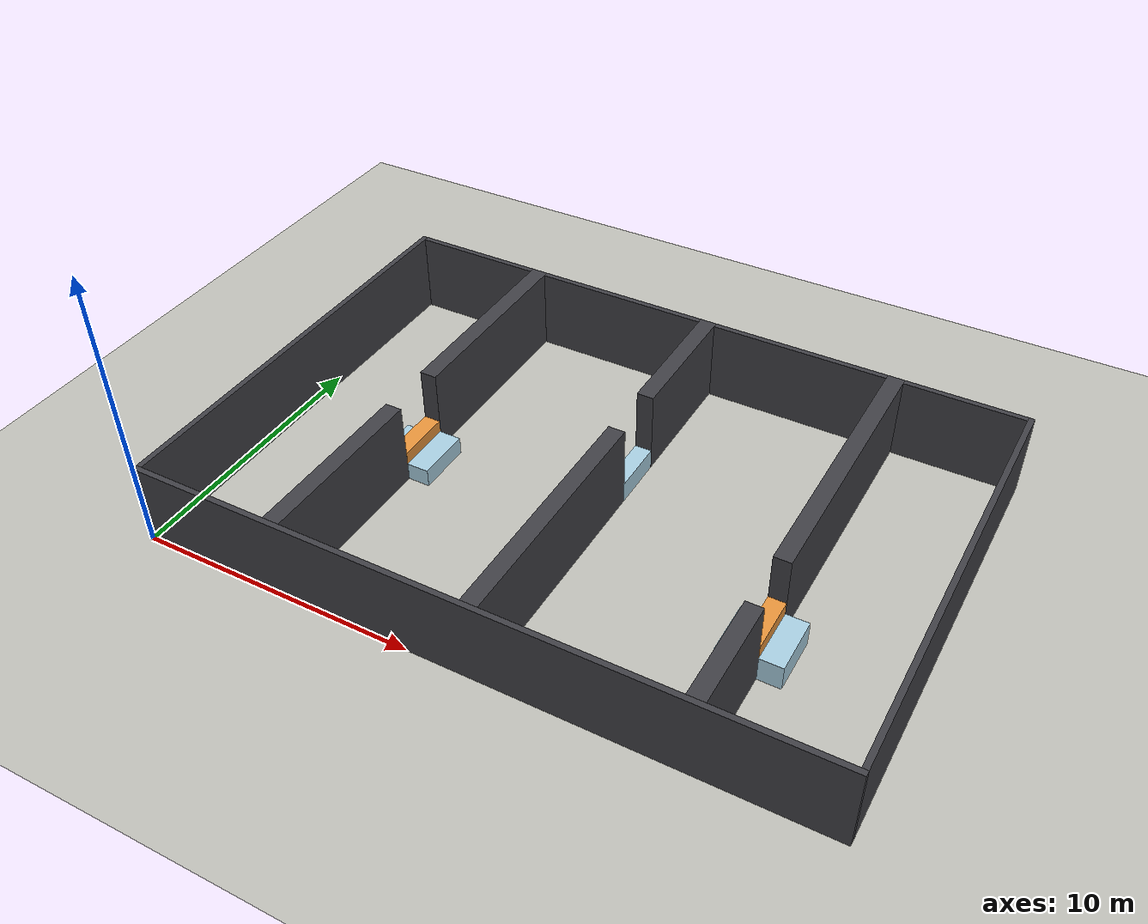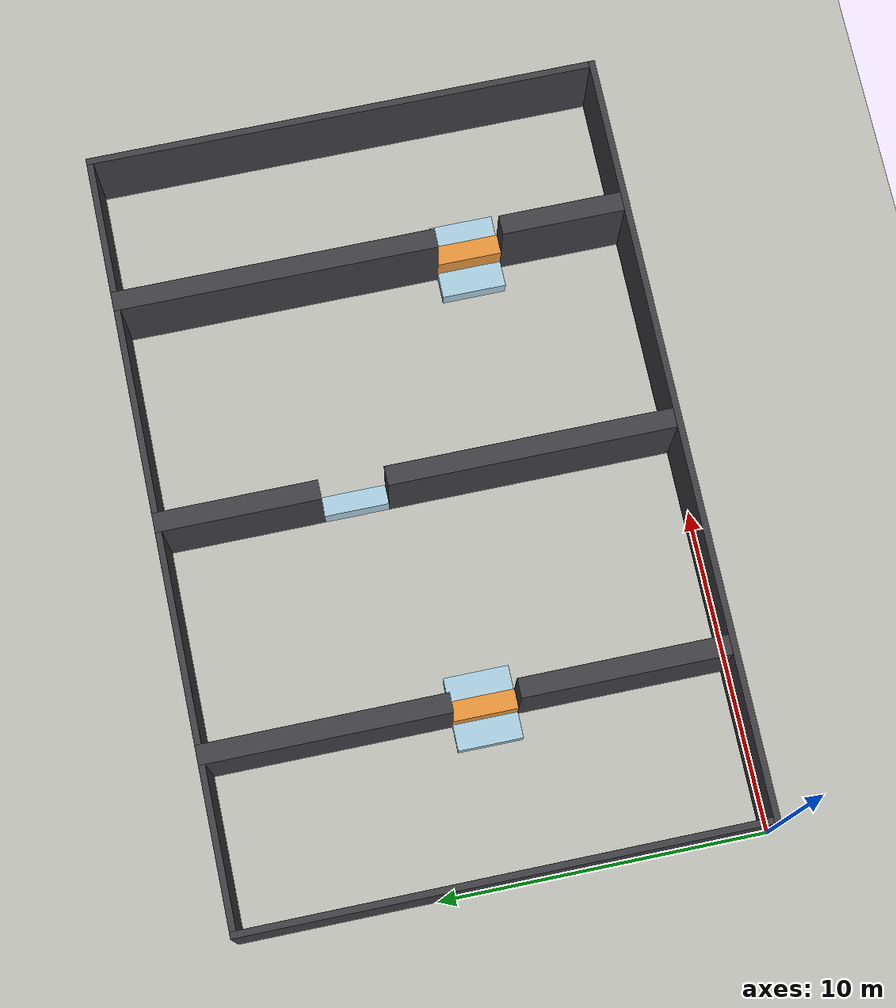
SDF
<?xml version="1.0" ?>
<!-- 자동 생성 파일 — 직접 수정하지 말 것.
     생성: python3 benchmark/export_sdf.py
     원본: benchmark/envs/heightmap.py 의 hard_corridor
     격벽 3개, 통로가 전부 장애물 -> 비행 필수 (지상 전용 실패) -->
<sdf version="1.9">
  <world name="hard_corridor">

    <physics name="1ms" type="ignored">
      <max_step_size>0.001</max_step_size>
      <real_time_factor>1.0</real_time_factor>
    </physics>

    <plugin filename="gz-sim-physics-system" name="gz::sim::systems::Physics">
    </plugin>
    <plugin filename="gz-sim-user-commands-system" name="gz::sim::systems::UserCommands">
    </plugin>
    <plugin filename="gz-sim-scene-broadcaster-system" name="gz::sim::systems::SceneBroadcaster">
    </plugin>
    <plugin filename="gz-sim-contact-system" name="gz::sim::systems::Contact">
    </plugin>
    <plugin filename="gz-sim-imu-system" name="gz::sim::systems::Imu">
    </plugin>
    <plugin filename="gz-sim-sensors-system" name="gz::sim::systems::Sensors">
      <render_engine>ogre</render_engine>
    </plugin>

    <light type="directional" name="sun">
      <cast_shadows>true</cast_shadows>
      <pose>0 0 10 0 0 0</pose>
      <diffuse>0.8 0.8 0.8 1</diffuse>
      <specular>0.2 0.2 0.2 1</specular>
      <direction>-0.5 0.1 -0.9</direction>
    </light>

    <model name="ground_plane">
      <static>true</static>
      <link name="link">
        <collision name="collision">
          <geometry><plane>
            <normal>0 0 1</normal>
            <size>34.0 26.0</size>
          </plane></geometry>
        </collision>
        <visual name="visual">
          <geometry><plane>
            <normal>0 0 1</normal>
            <size>34.0 26.0</size>
          </plane></geometry>
          <material>
            <ambient>0.75 0.75 0.72 1</ambient>
            <diffuse>0.75 0.75 0.72 1</diffuse>
          </material>
        </visual>
      </link>
    </model>

    <model name="obs_0001_h040">
      <static>true</static>
      <pose>4.600 7.500 0.200 0 0 0</pose>
      <link name="link">
        <collision name="collision">
          <geometry><box><size>0.800 2.000 0.400</size></box></geometry>
        </collision>
        <visual name="visual">
          <geometry><box><size>0.800 2.000 0.400</size></box></geometry>
          <material>
            <ambient>0.66 0.81 0.88 1</ambient>
            <diffuse>0.66 0.81 0.88 1</diffuse>
          </material>
        </visual>
      </link>
    </model>
    <model name="obs_0002_h055">
      <static>true</static>
      <pose>18.600 5.000 0.275 0 0 0</pose>
      <link name="link">
        <collision name="collision">
          <geometry><box><size>0.800 2.000 0.550</size></box></geometry>
        </collision>
        <visual name="visual">
          <geometry><box><size>0.800 2.000 0.550</size></box></geometry>
          <material>
            <ambient>0.66 0.81 0.88 1</ambient>
            <diffuse>0.66 0.81 0.88 1</diffuse>
          </material>
        </visual>
      </link>
    </model>
    <model name="obs_0003_h065">
      <static>true</static>
      <pose>6.000 7.500 0.325 0 0 0</pose>
      <link name="link">
        <collision name="collision">
          <geometry><box><size>0.800 2.000 0.650</size></box></geometry>
        </collision>
        <visual name="visual">
          <geometry><box><size>0.800 2.000 0.650</size></box></geometry>
          <material>
            <ambient>0.66 0.81 0.88 1</ambient>
            <diffuse>0.66 0.81 0.88 1</diffuse>
          </material>
        </visual>
      </link>
    </model>
    <model name="obs_0004_h075">
      <static>true</static>
      <pose>12.300 10.000 0.375 0 0 0</pose>
      <link name="link">
        <collision name="collision">
          <geometry><box><size>0.600 2.000 0.750</size></box></geometry>
        </collision>
        <visual name="visual">
          <geometry><box><size>0.600 2.000 0.750</size></box></geometry>
          <material>
            <ambient>0.66 0.81 0.88 1</ambient>
            <diffuse>0.66 0.81 0.88 1</diffuse>
          </material>
        </visual>
      </link>
    </model>
    <model name="obs_0005_h090">
      <static>true</static>
      <pose>20.000 5.000 0.450 0 0 0</pose>
      <link name="link">
        <collision name="collision">
          <geometry><box><size>0.800 2.000 0.900</size></box></geometry>
        </collision>
        <visual name="visual">
          <geometry><box><size>0.800 2.000 0.900</size></box></geometry>
          <material>
            <ambient>0.66 0.81 0.88 1</ambient>
            <diffuse>0.66 0.81 0.88 1</diffuse>
          </material>
        </visual>
      </link>
    </model>
    <model name="obs_0006_h110">
      <static>true</static>
      <pose>5.300 7.500 0.550 0 0 0</pose>
      <link name="link">
        <collision name="collision">
          <geometry><box><size>0.600 2.000 1.100</size></box></geometry>
        </collision>
        <visual name="visual">
          <geometry><box><size>0.600 2.000 1.100</size></box></geometry>
          <material>
            <ambient>0.91 0.58 0.23 1</ambient>
            <diffuse>0.91 0.58 0.23 1</diffuse>
          </material>
        </visual>
      </link>
    </model>
    <model name="obs_0007_h135">
      <static>true</static>
      <pose>19.300 5.000 0.675 0 0 0</pose>
      <link name="link">
        <collision name="collision">
          <geometry><box><size>0.600 2.000 1.350</size></box></geometry>
        </collision>
        <visual name="visual">
          <geometry><box><size>0.600 2.000 1.350</size></box></geometry>
          <material>
            <ambient>0.91 0.58 0.23 1</ambient>
            <diffuse>0.91 0.58 0.23 1</diffuse>
          </material>
        </visual>
      </link>
    </model>
    <model name="obs_0008_h300">
      <static>true</static>
      <pose>12.000 0.100 1.500 0 0 0</pose>
      <link name="link">
        <collision name="collision">
          <geometry><box><size>24.000 0.200 3.000</size></box></geometry>
        </collision>
        <visual name="visual">
          <geometry><box><size>24.000 0.200 3.000</size></box></geometry>
          <material>
            <ambient>0.25 0.25 0.27 1</ambient>
            <diffuse>0.25 0.25 0.27 1</diffuse>
          </material>
        </visual>
      </link>
    </model>
    <model name="obs_0009_h300">
      <static>true</static>
      <pose>0.100 8.100 1.500 0 0 0</pose>
      <link name="link">
        <collision name="collision">
          <geometry><box><size>0.200 15.800 3.000</size></box></geometry>
        </collision>
        <visual name="visual">
          <geometry><box><size>0.200 15.800 3.000</size></box></geometry>
          <material>
            <ambient>0.25 0.25 0.27 1</ambient>
            <diffuse>0.25 0.25 0.27 1</diffuse>
          </material>
        </visual>
      </link>
    </model>
    <model name="obs_0010_h300">
      <static>true</static>
      <pose>5.300 3.350 1.500 0 0 0</pose>
      <link name="link">
        <collision name="collision">
          <geometry><box><size>0.600 6.300 3.000</size></box></geometry>
        </collision>
        <visual name="visual">
          <geometry><box><size>0.600 6.300 3.000</size></box></geometry>
          <material>
            <ambient>0.25 0.25 0.27 1</ambient>
            <diffuse>0.25 0.25 0.27 1</diffuse>
          </material>
        </visual>
      </link>
    </model>
    <model name="obs_0011_h300">
      <static>true</static>
      <pose>12.300 4.600 1.500 0 0 0</pose>
      <link name="link">
        <collision name="collision">
          <geometry><box><size>0.600 8.800 3.000</size></box></geometry>
        </collision>
        <visual name="visual">
          <geometry><box><size>0.600 8.800 3.000</size></box></geometry>
          <material>
            <ambient>0.25 0.25 0.27 1</ambient>
            <diffuse>0.25 0.25 0.27 1</diffuse>
          </material>
        </visual>
      </link>
    </model>
    <model name="obs_0012_h300">
      <static>true</static>
      <pose>19.300 2.100 1.500 0 0 0</pose>
      <link name="link">
        <collision name="collision">
          <geometry><box><size>0.600 3.800 3.000</size></box></geometry>
        </collision>
        <visual name="visual">
          <geometry><box><size>0.600 3.800 3.000</size></box></geometry>
          <material>
            <ambient>0.25 0.25 0.27 1</ambient>
            <diffuse>0.25 0.25 0.27 1</diffuse>
          </material>
        </visual>
      </link>
    </model>
    <model name="obs_0013_h300">
      <static>true</static>
      <pose>23.900 8.100 1.500 0 0 0</pose>
      <link name="link">
        <collision name="collision">
          <geometry><box><size>0.200 15.800 3.000</size></box></geometry>
        </collision>
        <visual name="visual">
          <geometry><box><size>0.200 15.800 3.000</size></box></geometry>
          <material>
            <ambient>0.25 0.25 0.27 1</ambient>
            <diffuse>0.25 0.25 0.27 1</diffuse>
          </material>
        </visual>
      </link>
    </model>
    <model name="obs_0014_h300">
      <static>true</static>
      <pose>19.300 11.000 1.500 0 0 0</pose>
      <link name="link">
        <collision name="collision">
          <geometry><box><size>0.600 10.000 3.000</size></box></geometry>
        </collision>
        <visual name="visual">
          <geometry><box><size>0.600 10.000 3.000</size></box></geometry>
          <material>
            <ambient>0.25 0.25 0.27 1</ambient>
            <diffuse>0.25 0.25 0.27 1</diffuse>
          </material>
        </visual>
      </link>
    </model>
    <model name="obs_0015_h300">
      <static>true</static>
      <pose>5.300 12.250 1.500 0 0 0</pose>
      <link name="link">
        <collision name="collision">
          <geometry><box><size>0.600 7.500 3.000</size></box></geometry>
        </collision>
        <visual name="visual">
          <geometry><box><size>0.600 7.500 3.000</size></box></geometry>
          <material>
            <ambient>0.25 0.25 0.27 1</ambient>
            <diffuse>0.25 0.25 0.27 1</diffuse>
          </material>
        </visual>
      </link>
    </model>
    <model name="obs_0016_h300">
      <static>true</static>
      <pose>12.300 13.500 1.500 0 0 0</pose>
      <link name="link">
        <collision name="collision">
          <geometry><box><size>0.600 5.000 3.000</size></box></geometry>
        </collision>
        <visual name="visual">
          <geometry><box><size>0.600 5.000 3.000</size></box></geometry>
          <material>
            <ambient>0.25 0.25 0.27 1</ambient>
            <diffuse>0.25 0.25 0.27 1</diffuse>
          </material>
        </visual>
      </link>
    </model>
    <model name="obs_0017_h300">
      <static>true</static>
      <pose>2.600 15.900 1.500 0 0 0</pose>
      <link name="link">
        <collision name="collision">
          <geometry><box><size>4.800 0.200 3.000</size></box></geometry>
        </collision>
        <visual name="visual">
          <geometry><box><size>4.800 0.200 3.000</size></box></geometry>
          <material>
            <ambient>0.25 0.25 0.27 1</ambient>
            <diffuse>0.25 0.25 0.27 1</diffuse>
          </material>
        </visual>
      </link>
    </model>
    <model name="obs_0018_h300">
      <static>true</static>
      <pose>8.800 15.900 1.500 0 0 0</pose>
      <link name="link">
        <collision name="collision">
          <geometry><box><size>6.400 0.200 3.000</size></box></geometry>
        </collision>
        <visual name="visual">
          <geometry><box><size>6.400 0.200 3.000</size></box></geometry>
          <material>
            <ambient>0.25 0.25 0.27 1</ambient>
            <diffuse>0.25 0.25 0.27 1</diffuse>
          </material>
        </visual>
      </link>
    </model>
    <model name="obs_0019_h300">
      <static>true</static>
      <pose>15.800 15.900 1.500 0 0 0</pose>
      <link name="link">
        <collision name="collision">
          <geometry><box><size>6.400 0.200 3.000</size></box></geometry>
        </collision>
        <visual name="visual">
          <geometry><box><size>6.400 0.200 3.000</size></box></geometry>
          <material>
            <ambient>0.25 0.25 0.27 1</ambient>
            <diffuse>0.25 0.25 0.27 1</diffuse>
          </material>
        </visual>
      </link>
    </model>
    <model name="obs_0020_h300">
      <static>true</static>
      <pose>21.700 15.900 1.500 0 0 0</pose>
      <link name="link">
        <collision name="collision">
          <geometry><box><size>4.200 0.200 3.000</size></box></geometry>
        </collision>
        <visual name="visual">
          <geometry><box><size>4.200 0.200 3.000</size></box></geometry>
          <material>
            <ambient>0.25 0.25 0.27 1</ambient>
            <diffuse>0.25 0.25 0.27 1</diffuse>
          </material>
        </visual>
      </link>
    </model>

  </world>
</sdf>
